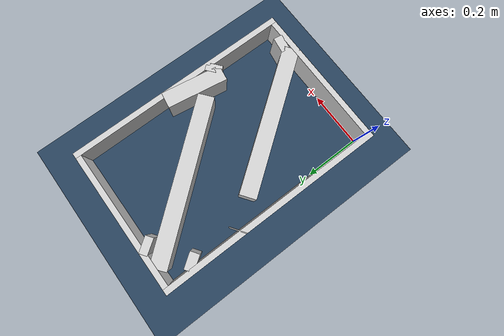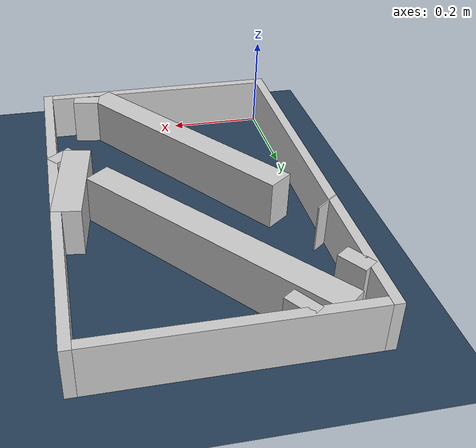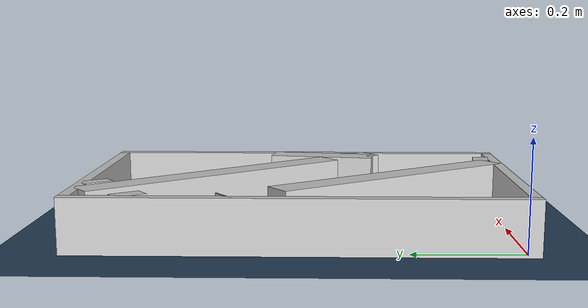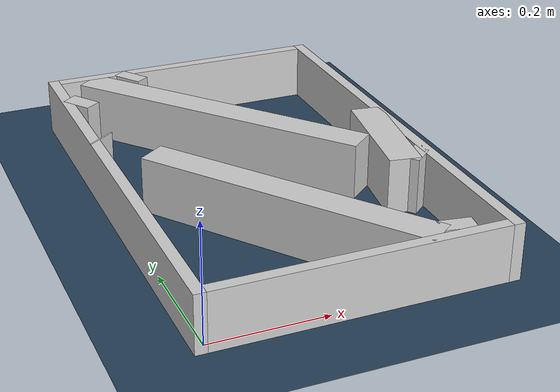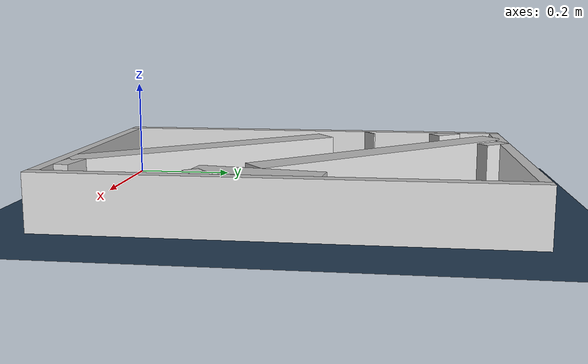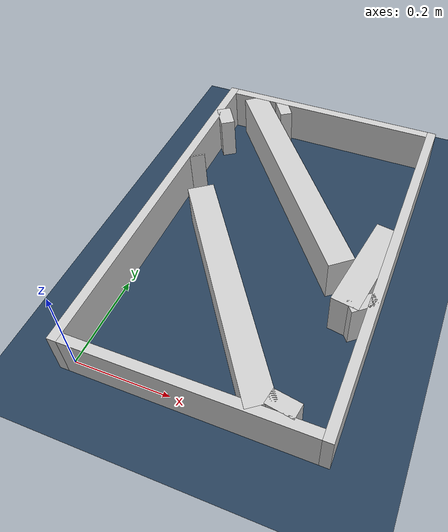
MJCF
<?xml version="1.0" ?>
<mujoco model="generated_real_template">
  <compiler angle="degree"/>
  <option timestep="0.002" integrator="implicitfast" iterations="100" cone="elliptic"/>
  <default>
    <geom density="1"/>
  </default>
  <asset>
    <texture builtin="gradient" height="3072" rgb1="0.3 0.5 0.7" rgb2="0 0 0" type="skybox" width="512"/>
    <texture builtin="checker" height="300" mark="edge" markrgb="0.8 0.8 0.8" name="groundplane" rgb1="0.2 0.3 0.4" rgb2="0.1 0.2 0.3" type="2d" width="300"/>
    <material name="groundplane" reflectance="0.2" texrepeat="5 5" texture="groundplane" texuniform="true"/>
  </asset>
  <worldbody>
    <light dir="0 0 -1" directional="true" pos="0 0 1.5"/>
    <geom name="floor" type="plane" condim="4" friction="0.5 0.005 0.001" material="groundplane" size="0 0 0.05"/>
    <body name="walls">
      <geom name="wall_boundary_left" type="box" condim="4" friction="1.0 0.005 0.0001" rgba="0.8 0.8 0.8 1" pos="-0.010000 0.387500 0.050000" euler="0 0 0.000000" size="0.010000 0.407500 0.050000"/>
      <geom name="wall_boundary_right" type="box" condim="4" friction="1.0 0.005 0.0001" rgba="0.8 0.8 0.8 1" pos="0.500000 0.387500 0.050000" euler="0 0 0.000000" size="0.010000 0.407500 0.050000"/>
      <geom name="wall_boundary_bottom" type="box" condim="4" friction="1.0 0.005 0.0001" rgba="0.8 0.8 0.8 1" pos="0.245000 -0.010000 0.050000" euler="0 0 0.000000" size="0.245000 0.010000 0.050000"/>
      <geom name="wall_boundary_top" type="box" condim="4" friction="1.0 0.005 0.0001" rgba="0.8 0.8 0.8 1" pos="0.245000 0.785000 0.050000" euler="0 0 0.000000" size="0.245000 0.010000 0.050000"/>
      <geom name="wall_inner_1_1" type="box" condim="4" friction="1.0 0.005 0.0001" rgba="0.8 0.8 0.8 1" pos="0.013397 0.679712 0.050000" euler="0 0 34.777336" size="0.016311 0.028500 0.050000"/>
      <geom name="wall_inner_1_2" type="box" condim="4" friction="1.0 0.005 0.0001" rgba="0.8 0.8 0.8 1" pos="0.134172 0.763581 0.050000" euler="0 0 34.777336" size="0.014040 0.028500 0.050000"/>
      <geom name="wall_inner_2_1" type="box" condim="4" friction="1.0 0.005 0.0001" rgba="0.8 0.8 0.8 1" pos="0.465008 0.347838 0.050000" euler="0 0 -98.949068" size="0.108246 0.028500 0.050000"/>
      <geom name="wall_inner_2_2" type="box" condim="4" friction="1.0 0.005 0.0001" rgba="0.8 0.8 0.8 1" pos="0.412706 0.015708 0.050000" euler="0 0 -98.949068" size="0.015902 0.028500 0.050000"/>
      <geom name="wall_inner_3_1" type="box" condim="4" friction="1.0 0.005 0.0001" rgba="0.8 0.8 0.8 1" pos="0.235170 0.554698 0.050000" euler="0 0 -50.738614" size="0.284529 0.028500 0.050000"/>
      <geom name="wall_inner_3_2" type="box" condim="4" friction="1.0 0.005 0.0001" rgba="0.8 0.8 0.8 1" pos="0.478808 0.256622 0.050000" euler="0 0 -50.738614" size="0.014418 0.028500 0.050000"/>
      <geom name="wall_inner_4_1" type="box" condim="4" friction="1.0 0.005 0.0001" rgba="0.8 0.8 0.8 1" pos="0.222695 0.214052 0.050000" euler="0 0 126.204954" size="0.265274 0.028500 0.050000"/>
      <geom name="wall_inner_4_2" type="box" condim="4" friction="1.0 0.005 0.0001" rgba="0.8 0.8 0.8 1" pos="0.003841 0.513024 0.050000" euler="0 0 126.204954" size="0.001428 0.028500 0.050000"/>
    </body>
  </worldbody>
</mujoco>
